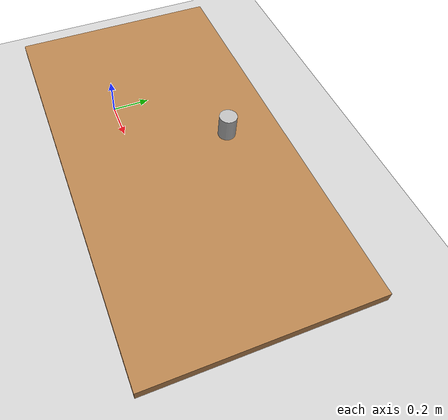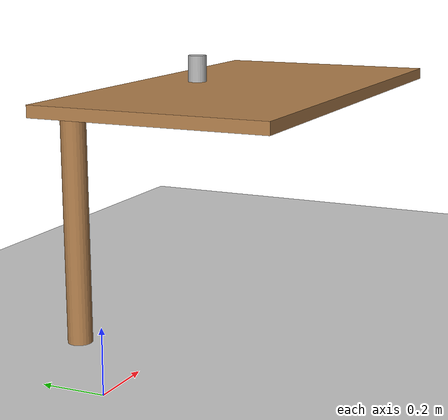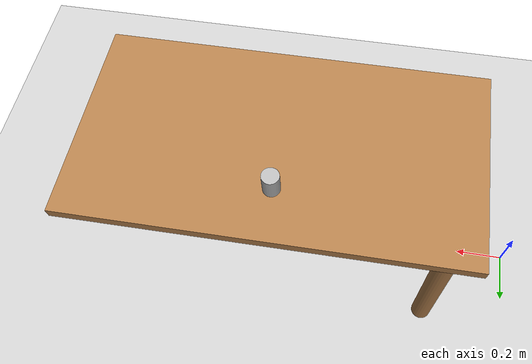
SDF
<?xml version="1.0" ?>
<sdf version="1.6">
  <world name="default">
    <!-- A ground plane -->
    <include>
      <uri>model://ground_plane</uri>
    </include>

    <!-- A global light source -->
    <include>
      <uri>model://sun</uri>
    </include>

    <!-- Physics Engine -->
    <physics type="ode">
      <gravity>0 0 -9.81</gravity>
      <ode>
        <solver>
          <type>quick</type>
          <iters>50</iters>
          <sor>1.3</sor>
        </solver>
        <constraints>
          <cfm>0.0</cfm>
          <erp>0.2</erp>
          <contact_max_correcting_vel>100</contact_max_correcting_vel>
          <contact_surface_layer>0.001</contact_surface_layer>
        </constraints>
      </ode>
    </physics>

    <!-- A table -->
    <model name="table">
      <static>true</static>
      <link name="link">
        <collision name="surface">
          <geometry>
            <box>
              <size>1.5 0.8 0.04</size>
            </box>
          </geometry>
        </collision>
        <visual name="visual">
          <geometry>
            <box>
              <size>1.5 0.8 0.04</size>
            </box>
          </geometry>
          <material>
            <script>
              <uri>file://media/materials/scripts/gazebo.material</uri>
              <name>Gazebo/Wood</name>
            </script>
          </material>
        </visual>
        <pose>0 0 0.75 0 0 0</pose>
      </link>
      <link name="leg1">
        <collision name="collision">
          <geometry>
            <cylinder>
              <radius>0.04</radius>
              <length>0.75</length>
            </cylinder>
          </geometry>
        </collision>
        <visual name="visual">
          <geometry>
            <cylinder>
              <radius>0.04</radius>
              <length>0.75</length>
            </cylinder>
          </geometry>
          <material>
            <script>
              <uri>file://media/materials/scripts/gazebo.material</uri>
              <name>Gazebo/Wood</name>
            </script>
          </material>
        </visual>
        <pose>-0.65 0.3 0.375 0 0 0</pose>
      </link>
      <!-- ... (other legs) ... -->
      <pose>1 0 0 0 0 0</pose>
    </model>

    <!-- Object for manipulation -->
    <model name="coke_can">
      <link name="link">
        <inertial>
          <mass>0.39</mass>
          <inertia>
            <ixx>0.00058</ixx>
            <ixy>0</ixy>
            <ixz>0</ixz>
            <iyy>0.00058</iyy>
            <iyz>0</iyz>
            <izz>0.00019</izz>
          </inertia>
        </inertial>
        <collision name="collision">
          <geometry>
            <cylinder>
              <radius>0.0325</radius>
              <length>0.125</length>
            </cylinder>
          </geometry>
        </collision>
        <visual name="visual">
          <geometry>
            <cylinder>
              <radius>0.0325</radius>
              <length>0.125</length>
            </cylinder>
          </geometry>
          <material>
            <script>
              <uri>model://coke_can/materials/scripts</uri>
              <uri>model://coke_can/materials/textures</uri>
              <name>CokeCan/Diffuse</name>
            </script>
          </material>
        </visual>
      </link>
      <pose>1 0.2 0.8 0 0 0</pose>
    </model>

    <!-- Sensors (as part of a robot model or standalone) -->
    <model name='sensor_suite'>
      <pose>0 0 1 0 0 0</pose>
      <link name='link'>
        <sensor name='camera' type='camera'>
          <camera>
            <horizontal_fov>1.047</horizontal_fov>
            <image>
              <width>640</width>
              <height>480</height>
            </image>
            <clip>
              <near>0.1</near>
              <far>100</far>
            </clip>
          </camera>
          <always_on>1</always_on>
          <update_rate>30</update_rate>
        </sensor>
        <sensor name='lidar' type='ray'>
          <ray>
            <scan>
              <horizontal>
                <samples>360</samples>
                <resolution>1</resolution>
                <min_angle>-3.14159</min_angle>
                <max_angle>3.14159</max_angle>
              </horizontal>
            </scan>
            <range>
              <min>0.12</min>
              <max>10</max>
              <resolution>0.01</resolution>
            </range>
          </ray>
          <always_on>1</always_on>
          <update_rate>10</update_rate>
        </sensor>
        <sensor name='imu' type='imu'>
          <imu/>
          <always_on>1</always_on>
          <update_rate>100</update_rate>
        </sensor>
      </link>
    </model>

  </world>
</sdf>
